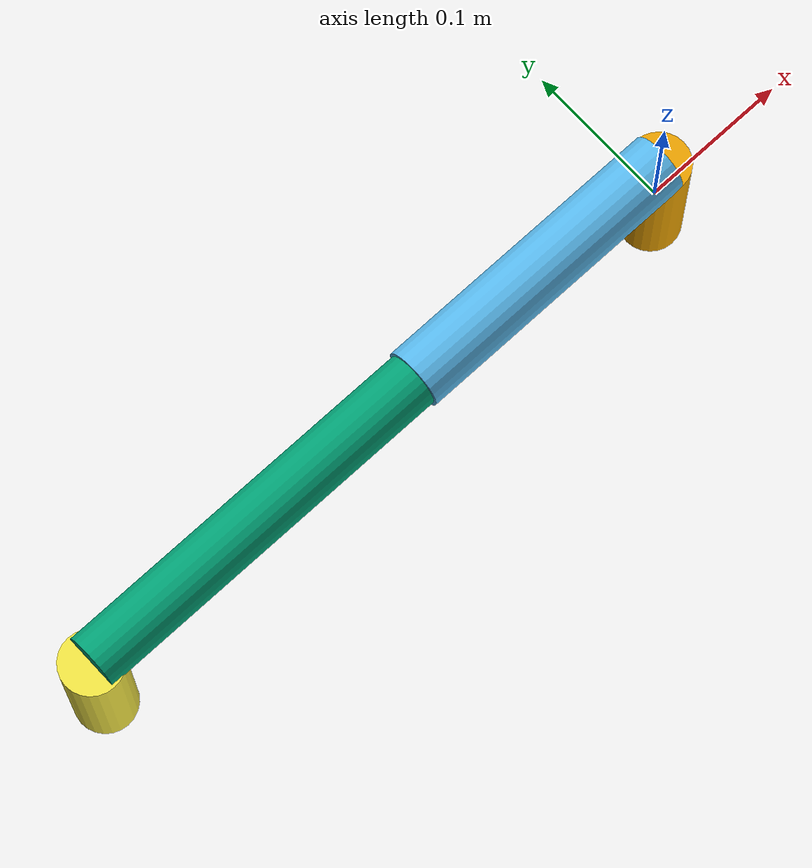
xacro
<?xml version="1.0"?>
<robot name="mon_futur_robot" xmlns:xacro="http://ros.org/wiki/xacro">
  <xacro:include filename="$(find robot_description)/urdf/robot.wheels.xacro"/>

  <!-- Constants for robot dimensions -->
  <xacro:property name="PI" value="3.1415926535897931"/>
  <xacro:property name="mass_first_part" value="0.01" /> <!-- arbitrary value for mass -->
  <xacro:property name="length_1" value="0.1" /> <!-- first arm -->
  <xacro:property name="length_2" value="0.20" /> <!-- second arm -->
  <xacro:property name="length_3" value="0.25" /> <!-- third arm -->
  <xacro:property name="length_4" value="0.1" /> <!-- laser arm -->

  <xacro:property name="arm_position" value="0.17" /> <!-- first arm -->
  <xacro:property name="radius" value="0.02" />
  <xacro:property name="radius_arm_3" value="0.018" />
  <xacro:property name="camera_link" value="0.05" /> <!-- Size of square 'camera' box -->
  <xacro:property name="axel_offset" value="0.05" /> <!-- Space btw top of beam and the each joint -->

  <xacro:macro name="default_inertial" params="mass">
    <inertial>
      <mass value="${mass}" />
      <inertia ixx="0.01" ixy="0.0001" ixz="0.0001" iyy="0.01" iyz="0.0001" izz="0.01" />
    </inertial>
  </xacro:macro>

<!-- Mobile arm -->

<!-- First part -->
  <link name="arm_1_link">
    <collision>
      <origin rpy="0 0 0" xyz="0 0 0"/>
      <geometry>
        <cylinder length="${length_1}" radius="${radius}"/>
      </geometry>
    </collision>
    <visual>
      <origin rpy="0 0 0" xyz="0 0 0"/>
      <geometry>
        <cylinder length="${length_1}" radius="${radius}"/>
      </geometry>
    </visual>
    <inertial>
      <mass value="0.01"/>
      <origin rpy="0 0 0" xyz="0 0 0"/>
      <inertia ixx="0.001" ixy="0" ixz="0" iyy="0.001" iyz="0" izz="0.001"/>
    </inertial>
  </link>

  <!--xacro:property name="arm_1_link" value="0.05" /--> <!-- Size of square 'camera' box -->

  <joint name="joint_12" type="revolute">
    <parent link="arm_1_link"/>
    <child link="arm_2_link"/>
    <origin xyz="0 0 ${length_1/2}" rpy="0 1.5707 3.1415"/>
    <axis xyz="1 0 0"/>
    <limit effort="5.0" lower="-3" upper="3.2" velocity="1"/>

    <!--dynamics damping="0.7"/-->
  </joint>

 <!--second Link -->
  <link name="arm_2_link">
    <visual>
      <origin xyz="0 0 ${length_2 / 2}" rpy="0 0 0"/>
      <geometry>
        <cylinder length="${length_2}" radius="${radius}"/>
      </geometry>
    </visual>

    <inertial>
      <mass value="0.01"/>
      <origin rpy="0 0 0" xyz="0 0 0"/>
      <inertia ixx="0.001" ixy="0.001" ixz="0.001" iyy="0.001" iyz="0.001" izz="0.001"/>
    </inertial>
  </link>

  <joint name="joint_23" type="prismatic">
    <parent link="arm_2_link"/>
    <child link="arm_3_link"/>
    <origin xyz="0 0 ${length_2}" rpy="0 0 0"/>
    <axis xyz="0 0 1"/>
    <limit effort="10.0" lower="-1.0" upper="1.0" velocity="0.5"/>

  </joint>

   <!--Third Link Verin entre 2 et 3-->

  <link name="arm_3_link">
    <visual>
      <origin xyz="0 0 ${length_3 / 2}" rpy="0 0 0"/>
      <geometry>
        <cylinder length="${length_3}" radius="${radius_arm_3}"/>
      </geometry>
    </visual>

    <inertial>
      <mass value="0.01"/>
      <origin rpy="0 0 0" xyz="0 0 0"/>
      <inertia ixx="0.001" ixy="0.001" ixz="0.001" iyy="0.001" iyz="0.001" izz="0.001"/>
    </inertial>
</link>

  <gazebo reference="arm_3_link">
    <visual>
      <material>
        <ambient>0.25 0.25 0.80 1</ambient>
        <diffuse>0.25 0.25 0.80 1</diffuse>
      </material>
    </visual>
  </gazebo>

<joint name="joint_34" type="fixed">
    <origin xyz="0 0 ${length_3}" rpy="0 1.5707 0"/>
    <child link="laser"/>
    <parent link="arm_3_link"/>
  </joint>

    <!-- 4th Link LASER-->

  <link name="laser">
    <collision>
      <origin xyz="0 0 ${length_4 / 2}" rpy="0 0 0"/>
      <geometry>
        <cylinder length="${length_4}" radius="${radius}"/>
      </geometry>
    </collision>

    <visual>
      <origin xyz="0 0 ${length_4 / 2}" rpy="0 0 0"/>
      <geometry>
        <cylinder length="${length_4}" radius="${radius}"/>
      </geometry>
    </visual>

    <inertial>
      <mass value="0.01"/>
      <origin rpy="0 0 0" xyz="0 0 0"/>
      <inertia ixx="0.001" ixy="0.001" ixz="0.001" iyy="0.001" iyz="0.001" izz="0.001"/>
    </inertial>
  </link>

  <!-- Controllers -->

  <gazebo>
    <plugin name="gazebo_ros_control" filename="libgazebo_ros_control.so">
      <robotNamespace>/rrbot</robotNamespace>
    </plugin>
  </gazebo>

  <transmission name="tran1">
    <type>transmission_interface/SimpleTransmission</type>
    <joint name="joint_12">
      <hardwareInterface>hardware_interface/EffortJointInterface</hardwareInterface>
    </joint>
    <actuator name="motor1">
      <hardwareInterface>hardware_interface/EffortJointInterface</hardwareInterface>
      <mechanicalReduction>1</mechanicalReduction>
    </actuator>
  </transmission>

  <transmission name="tran2">
    <type>transmission_interface/SimpleTransmission</type>
    <joint name="joint_23">
      <hardwareInterface>hardware_interface/EffortJointInterface</hardwareInterface>
    </joint>
    <actuator name="motor2">
      <hardwareInterface>hardware_interface/EffortJointInterface</hardwareInterface>
      <mechanicalReduction>1</mechanicalReduction>
    </actuator>
</transmission>

</robot>
